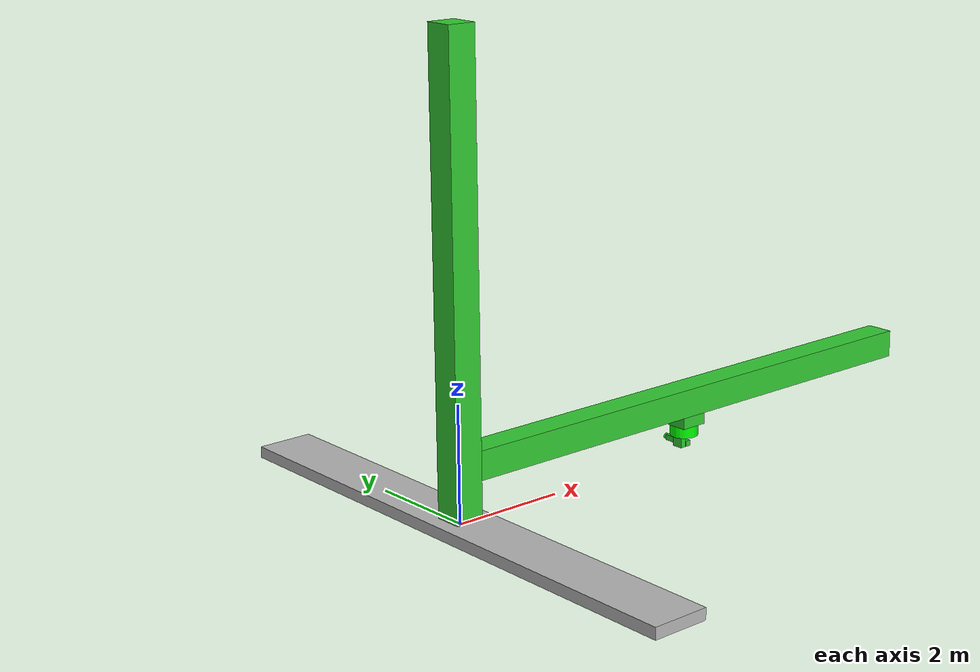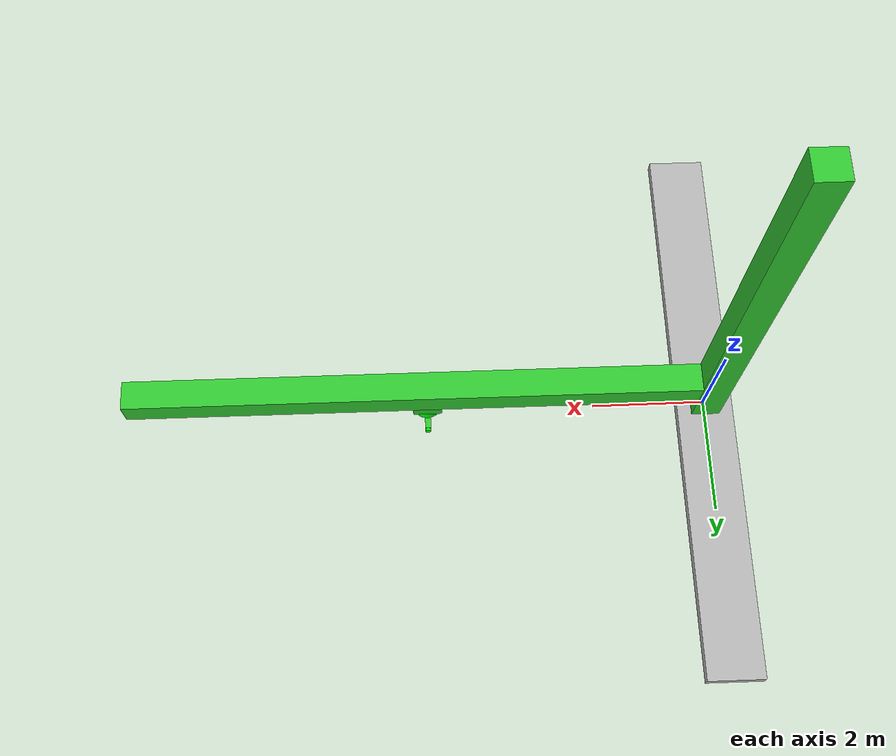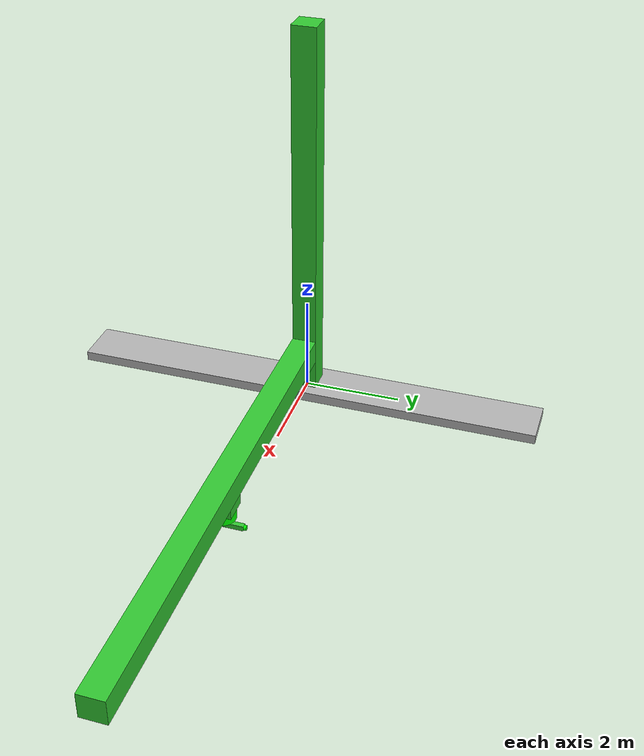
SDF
<?xml version="1.0" ?>
<sdf version="1.6">
  <world name="default">
    <plugin
      filename="gz-sim-physics-system"
      name="gz::sim::systems::Physics">
    </plugin>
    <plugin
      filename="gz-sim-scene-broadcaster-system"
      name="gz::sim::systems::SceneBroadcaster">
    </plugin>

    <gravity>0 0 0</gravity>

    <light type="directional" name="sun">
      <cast_shadows>true</cast_shadows>
      <pose>0 0 10 0 0 0</pose>
      <diffuse>1 1 1 1</diffuse>
      <specular>0.5 0.5 0.5 1</specular>
      <attenuation>
        <range>1000</range>
        <constant>0.9</constant>
        <linear>0.01</linear>
        <quadratic>0.001</quadratic>
      </attenuation>
      <direction>-0.5 0.1 -0.9</direction>
    </light>

    <model name="joint_position_controller_demo">
      <pose>0 0 0 0 0 0</pose>

      <link name="base_link">
        <pose>0.0 0.0 0.0 0 0 0</pose>
        <inertial>
          <inertia>
            <ixx>88.5</ixx>
            <ixy>0</ixy>
            <ixz>0</ixz>
            <iyy>8416</iyy>
            <iyz>0</iyz>
            <izz>8333</izz>
          </inertia>
          <mass>1000.0</mass>
        </inertial>
        <visual name="base_visual">
          <pose>0.0 0.0 0.0 0 0 0</pose>
          <geometry>
            <box>
              <size>1 10 0.2</size>
            </box>
          </geometry>
        </visual>
      </link>

      <link name="liny_link">
        <pose>0.0 0.0 4 0 0 0</pose>
        <inertial>
          <inertia>
            <ixx>535</ixx>
            <ixy>0</ixy>
            <ixz>0</ixz>
            <iyy>535</iyy>
            <iyz>0</iyz>
            <izz>4.2</izz>
          </inertia>
          <mass>100</mass>
        </inertial>
        <visual name="visual">
          <geometry>
            <box>
              <size>0.5 0.5 8</size>
            </box>
          </geometry>
          <material>
            <ambient>0.2 0.8 0.2 1</ambient>
          </material>
        </visual>
      </link>

      <link name="linz_link">
        <pose>5.25 0 1 0 0 0</pose>
        <inertial>
          <inertia>
            <ixx>0.032</ixx>
            <ixy>0</ixy>
            <ixz>0</ixz>
            <iyy>0.032</iyy>
            <iyz>0</iyz>
            <izz>0.00012</izz>
          </inertia>
          <mass>50</mass>
        </inertial>
        <visual name="visual">
          <geometry>
            <box>
              <size>10 0.5 0.5</size>
            </box>
          </geometry>
          <material>
            <ambient>0.2 0.8 0.2 1</ambient>
          </material>
        </visual>
      </link>

      <link name="linx_link">
        <pose>5 0 0.65 0 0 0</pose>
        <inertial>
          <inertia>
            <ixx>0.032</ixx>
            <ixy>0</ixy>
            <ixz>0</ixz>
            <iyy>0.032</iyy>
            <iyz>0</iyz>
            <izz>0.00012</izz>
          </inertia>
          <mass>10</mass>
        </inertial>
        <visual name="visual">
          <geometry>
            <box>
              <size>0.5 0.5 0.2</size>
            </box>
          </geometry>
          <material>
            <ambient>0.2 0.8 0.2 1</ambient>
          </material>
        </visual>
      </link>

     <link name="roty_link">
        <pose> 5 0 0.45 0 0 0</pose>
        <inertial>
          <inertia>
            <ixx>2</ixx>
            <ixy>0</ixy>
            <ixz>0</ixz>
            <iyy>2</iyy>
            <iyz>0</iyz>
            <izz>2</izz>
          </inertia>
          <mass>5.0</mass>
        </inertial>
        <visual name="visual">
          <geometry>
            <cylinder>
              <radius>0.25</radius>
              <length>0.2</length>
            </cylinder>
          </geometry>
          <material>
            <ambient>0 1 0 1</ambient>
            <diffuse>0 1 0 1</diffuse>
            <specular>0 1 0 1</specular>
          </material>
        </visual>
      </link>

	<link name="midrot_link">
        <pose>4.8875 0 0.25 0 0 0</pose>
        <inertial>
          <inertia>
            <ixx>0.032</ixx>
            <ixy>0</ixy>
            <ixz>0</ixz>
            <iyy>0.032</iyy>
            <iyz>0</iyz>
            <izz>0.00012</izz>
          </inertia>
          <mass>1</mass>
        </inertial>
        <visual name="visual">
          <geometry>
            <box>
              <size>0.1 0.2 0.2</size>
            </box>
          </geometry>
          <material>
            <ambient>0.2 0.8 0.2 1</ambient>
          </material>
        </visual>
      </link>

      <link name="rotr_link">
        <pose>5 0.15 0.2 0 0 0</pose>
        <inertial>
          <inertia>
            <ixx>0.032</ixx>
            <ixy>0</ixy>
            <ixz>0</ixz>
            <iyy>0.032</iyy>
            <iyz>0</iyz>
            <izz>0.00012</izz>
          </inertia>
          <mass>1</mass>
        </inertial>
        <visual name="visual">
          <geometry>
            <box>
              <size>0.1 0.5 0.1</size>
            </box>
          </geometry>
          <material>
            <ambient>0.2 0.8 0.2 1</ambient>
          </material>
        </visual>
      </link>

      <link name="camera_link">
        <pose> 5 0.425 0.2 1.57 0 0</pose>
        <inertial>
          <inertia>
            <ixx>2</ixx>
            <ixy>0</ixy>
            <ixz>0</ixz>
            <iyy>2</iyy>
            <iyz>0</iyz>
            <izz>2</izz>
          </inertia>
          <mass>5.0</mass>
        </inertial>
        <visual name="visual">
          <geometry>
            <cylinder>
              <radius>0.05</radius>
              <length>0.05</length>
            </cylinder>
          </geometry>
          <material>
            <ambient>0 1 0 1</ambient>
            <diffuse>0 1 0 1</diffuse>
            <specular>0 1 0 1</specular>
          </material>
        </visual>
      </link>

      <joint name="world_fixed" type="fixed">
        <parent>world</parent>
        <child>base_link</child>
      </joint>

      <joint name="liny_joint" type="prismatic">
        <pose>0 0 0 0 0 0</pose>
        <parent>base_link</parent>
        <child>liny_link</child>
        <axis>
          <xyz>0 1 0</xyz>
          <dynamics>
            <damping>0</damping>
          </dynamics>
        </axis>
      </joint>

      <joint name="linz_joint" type="prismatic">
        <pose>0 0 0 0 0 0</pose>
        <parent>liny_link</parent>
        <child>linz_link</child>
        <axis>
          <xyz>0 0 1</xyz>
          <dynamics>
            <damping>0</damping>
          </dynamics>
        </axis>
      </joint>

      <joint name="linx_joint" type="prismatic">
        <pose>0 0 0 0 0 0</pose>
        <parent>linz_link</parent>
        <child>linx_link</child>
        <axis>
          <xyz>1 0 0</xyz>
          <dynamics>
            <damping>0</damping>
          </dynamics>
        </axis>
      </joint>

      <joint name="roty_joint" type="revolute">
        <pose>0 0 0 0 0 0</pose>
        <parent>linx_link</parent>
        <child>roty_link</child>
        <axis>
          <xyz>0 0 1</xyz>
          <dynamics>
            <damping>0</damping>
          </dynamics>
        </axis>
      </joint>

      <joint name="mid_rot_joint" type="fixed">
        <parent>roty_joint</parent>
        <child>midrot_link</child>
      </joint>

      <joint name="rotr_joint" type="revolute">
        <pose>0 -0.15 0 0 0 0</pose>
        <parent>midrot_link</parent>
        <child>rotr_link</child>
        <axis>
          <xyz>1 0 0</xyz>
          <dynamics>
            <damping>0</damping>
          </dynamics>
        </axis>
      </joint>

      <joint name="rotp_joint" type="revolute">
        <pose>0 0 0 0 0 0</pose>
        <parent>rotr_link</parent>
        <child>camera_link</child>
        <axis>
          <xyz>0 0 1</xyz>
          <dynamics>
            <damping>0</damping>
          </dynamics>
        </axis>
      </joint>

      <plugin
        filename="gz-sim-joint-position-controller-system"
        name="gz::sim::systems::JointPositionController">
        <joint_name>liny_joint</joint_name>
        <topic>liny</topic>
        <p_gain>160</p_gain>
        <i_gain>20</i_gain>
        <d_gain>1000</d_gain>
        <i_max>1</i_max>
        <i_min>-1</i_min>
        <cmd_max>1000</cmd_max>
        <cmd_min>-1000</cmd_min>
      </plugin>

      <plugin
        filename="gz-sim-joint-position-controller-system"
        name="gz::sim::systems::JointPositionController">
        <joint_name>linz_joint</joint_name>
        <topic>linz</topic>
        <p_gain>160</p_gain>
        <i_gain>20</i_gain>
        <d_gain>1000</d_gain>
        <i_max>1</i_max>
        <i_min>-1</i_min>
        <cmd_max>1000</cmd_max>
        <cmd_min>-1000</cmd_min>
      </plugin>

    <plugin
        filename="gz-sim-joint-position-controller-system"
        name="gz::sim::systems::JointPositionController">
        <joint_name>linx_joint</joint_name>
        <topic>linx</topic>
        <p_gain>160</p_gain>
        <i_gain>20</i_gain>
        <d_gain>1000</d_gain>
        <i_max>1</i_max>
        <i_min>-1</i_min>
        <cmd_max>1000</cmd_max>
        <cmd_min>-1000</cmd_min>
      </plugin>

        <plugin
        filename="gz-sim-joint-position-controller-system"
        name="gz::sim::systems::JointPositionController">
        <joint_name>roty_joint</joint_name>
        <topic>roty</topic>
        <p_gain>160</p_gain>
        <i_gain>20</i_gain>
        <d_gain>1000</d_gain>
        <i_max>1</i_max>
        <i_min>-1</i_min>
        <cmd_max>1000</cmd_max>
        <cmd_min>-1000</cmd_min>
      </plugin>

    <plugin
        filename="gz-sim-joint-position-controller-system"
        name="gz::sim::systems::JointPositionController">
        <joint_name>rotr_joint</joint_name>
        <topic>rotr</topic>
        <p_gain>160</p_gain>
        <i_gain>20</i_gain>
        <d_gain>1000</d_gain>
        <i_max>1</i_max>
        <i_min>-1</i_min>
        <cmd_max>1000</cmd_max>
        <cmd_min>-1000</cmd_min>
      </plugin>

      <plugin
        filename="gz-sim-joint-position-controller-system"
        name="gz::sim::systems::JointPositionController">
        <joint_name>rotp_joint</joint_name>
        <topic>rotp</topic>
        <p_gain>160</p_gain>
        <i_gain>20</i_gain>
        <d_gain>1000</d_gain>
        <i_max>1</i_max>
        <i_min>-1</i_min>
        <cmd_max>1000</cmd_max>
        <cmd_min>-1000</cmd_min>
      </plugin>

    </model>
  </world>
</sdf>
